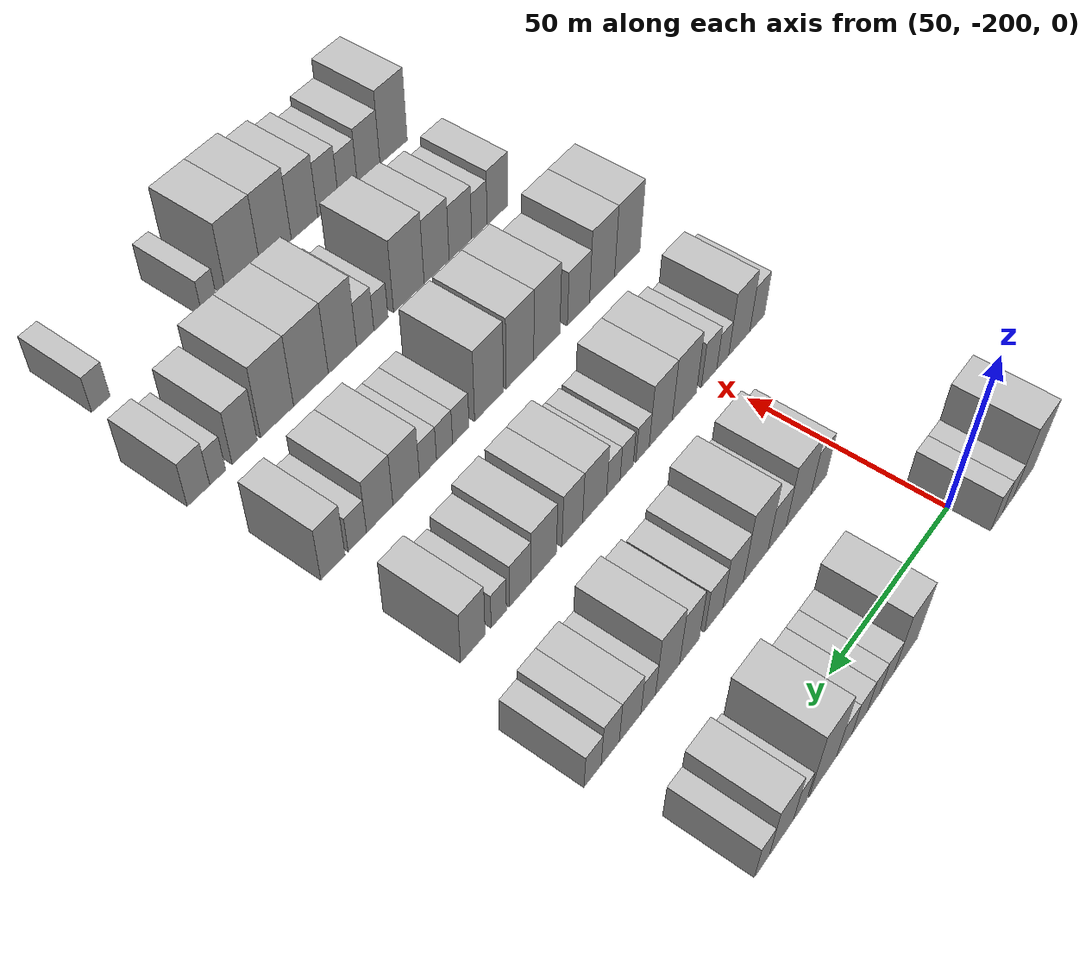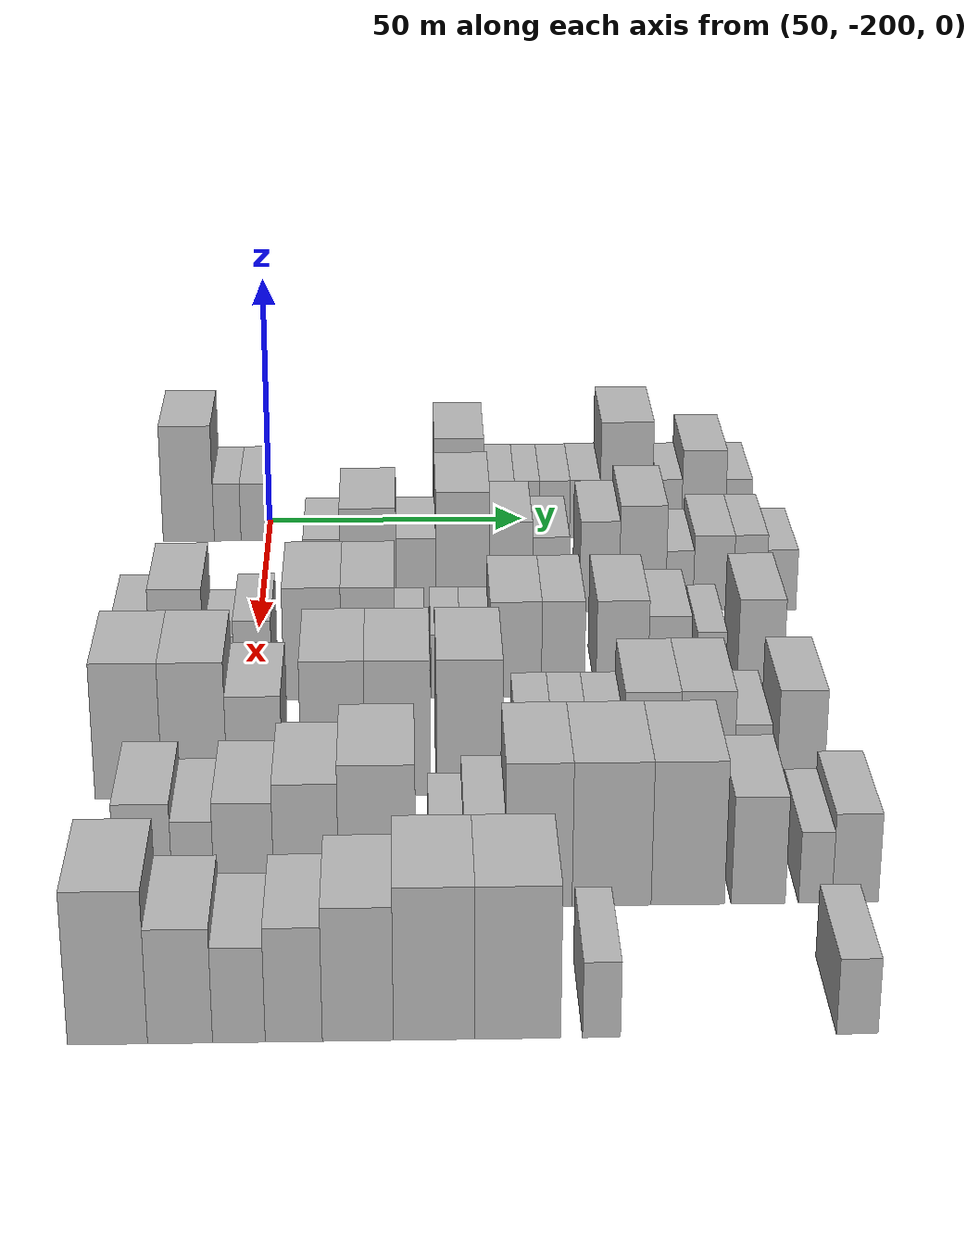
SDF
<sdf version="1.6">
 <world name="default">
  <model name="building_39">
   <static>1</static>
   <pose>50.0000 -215.5346 0 0.000000 0.000000 0.000000</pose>
   <link name="link">
    <pose>0 0 12.00 0 0 0</pose>
    <collision name="collision"><geometry><box><size>20.0000 9.9500 24.0000</size></box></geometry></collision>
    <visual name="visual">
     <cast_shadows>0</cast_shadows>
     <geometry><box><size>20.0000 9.9500 24.0000</size></box></geometry>
     <material>
      <script>
       <uri>model://HANNAS_wall/materials/scripts</uri>
       <uri>model://HANNAS_wall/materials/textures</uri>
       <name>vrc/HANNAS_wall</name>
      </script>
     </material>
    </visual>
   </link>
  </model>
  <model name="building_40">
   <static>1</static>
   <pose>50.0000 -207.9537 0 0.000000 0.000000 0.000000</pose>
   <link name="link">
    <pose>0 0 6.00 0 0 0</pose>
    <collision name="collision"><geometry><box><size>20.0000 5.2118 12.0000</size></box></geometry></collision>
    <visual name="visual">
     <cast_shadows>0</cast_shadows>
     <geometry><box><size>20.0000 5.2118 12.0000</size></box></geometry>
     <material>
      <script>
       <uri>model://HANNAS_wall/materials/scripts</uri>
       <uri>model://HANNAS_wall/materials/textures</uri>
       <name>vrc/HANNAS_wall</name>
      </script>
     </material>
    </visual>
   </link>
  </model>
  <model name="building_41">
   <static>1</static>
   <pose>50.0000 -202.7096 0 0.000000 0.000000 0.000000</pose>
   <link name="link">
    <pose>0 0 6.00 0 0 0</pose>
    <collision name="collision"><geometry><box><size>20.0000 5.2764 12.0000</size></box></geometry></collision>
    <visual name="visual">
     <cast_shadows>0</cast_shadows>
     <geometry><box><size>20.0000 5.2764 12.0000</size></box></geometry>
     <material>
      <script>
       <uri>model://HANNAS_wall/materials/scripts</uri>
       <uri>model://HANNAS_wall/materials/textures</uri>
       <name>vrc/HANNAS_wall</name>
      </script>
     </material>
    </visual>
   </link>
  </model>
  <model name="building_42">
   <static>1</static>
   <pose>50.0000 -162.7094 0 0.000000 0.000000 0.000000</pose>
   <link name="link">
    <pose>0 0 10.50 0 0 0</pose>
    <collision name="collision"><geometry><box><size>20.0000 9.5746 21.0000</size></box></geometry></collision>
    <visual name="visual">
     <cast_shadows>0</cast_shadows>
     <geometry><box><size>20.0000 9.5746 21.0000</size></box></geometry>
     <material>
      <script>
       <uri>model://HANNAS_wall/materials/scripts</uri>
       <uri>model://HANNAS_wall/materials/textures</uri>
       <name>vrc/HANNAS_wall</name>
      </script>
     </material>
    </visual>
   </link>
  </model>
  <model name="building_43">
   <static>1</static>
   <pose>50.0000 -154.9407 0 0.000000 0.000000 0.000000</pose>
   <link name="link">
    <pose>0 0 6.00 0 0 0</pose>
    <collision name="collision"><geometry><box><size>20.0000 5.9628 12.0000</size></box></geometry></collision>
    <visual name="visual">
     <cast_shadows>0</cast_shadows>
     <geometry><box><size>20.0000 5.9628 12.0000</size></box></geometry>
     <material>
      <script>
       <uri>model://HANNAS_wall/materials/scripts</uri>
       <uri>model://HANNAS_wall/materials/textures</uri>
       <name>vrc/HANNAS_wall</name>
      </script>
     </material>
    </visual>
   </link>
  </model>
  <model name="building_44">
   <static>1</static>
   <pose>50.0000 -149.4880 0 0.000000 0.000000 0.000000</pose>
   <link name="link">
    <pose>0 0 6.00 0 0 0</pose>
    <collision name="collision"><geometry><box><size>20.0000 4.9427 12.0000</size></box></geometry></collision>
    <visual name="visual">
     <cast_shadows>0</cast_shadows>
     <geometry><box><size>20.0000 4.9427 12.0000</size></box></geometry>
     <material>
      <script>
       <uri>model://HANNAS_wall/materials/scripts</uri>
       <uri>model://HANNAS_wall/materials/textures</uri>
       <name>vrc/HANNAS_wall</name>
      </script>
     </material>
    </visual>
   </link>
  </model>
  <model name="building_45">
   <static>1</static>
   <pose>50.0000 -144.0399 0 0.000000 0.000000 0.000000</pose>
   <link name="link">
    <pose>0 0 6.00 0 0 0</pose>
    <collision name="collision"><geometry><box><size>20.0000 5.9533 12.0000</size></box></geometry></collision>
    <visual name="visual">
     <cast_shadows>0</cast_shadows>
     <geometry><box><size>20.0000 5.9533 12.0000</size></box></geometry>
     <material>
      <script>
       <uri>model://HANNAS_wall/materials/scripts</uri>
       <uri>model://HANNAS_wall/materials/textures</uri>
       <name>vrc/HANNAS_wall</name>
      </script>
     </material>
    </visual>
   </link>
  </model>
  <model name="building_46">
   <static>1</static>
   <pose>50.0000 -138.1157 0 0.000000 0.000000 0.000000</pose>
   <link name="link">
    <pose>0 0 6.00 0 0 0</pose>
    <collision name="collision"><geometry><box><size>20.0000 5.8952 12.0000</size></box></geometry></collision>
    <visual name="visual">
     <cast_shadows>0</cast_shadows>
     <geometry><box><size>20.0000 5.8952 12.0000</size></box></geometry>
     <material>
      <script>
       <uri>model://HANNAS_wall/materials/scripts</uri>
       <uri>model://HANNAS_wall/materials/textures</uri>
       <name>vrc/HANNAS_wall</name>
      </script>
     </material>
    </visual>
   </link>
  </model>
  <model name="building_47">
   <static>1</static>
   <pose>50.0000 -130.0815 0 0.000000 0.000000 0.000000</pose>
   <link name="link">
    <pose>0 0 12.00 0 0 0</pose>
    <collision name="collision"><geometry><box><size>20.0000 10.1733 24.0000</size></box></geometry></collision>
    <visual name="visual">
     <cast_shadows>0</cast_shadows>
     <geometry><box><size>20.0000 10.1733 24.0000</size></box></geometry>
     <material>
      <script>
       <uri>model://HANNAS_wall/materials/scripts</uri>
       <uri>model://HANNAS_wall/materials/textures</uri>
       <name>vrc/HANNAS_wall</name>
      </script>
     </material>
    </visual>
   </link>
  </model>
  <model name="building_48">
   <static>1</static>
   <pose>50.0000 -121.5753 0 0.000000 0.000000 0.000000</pose>
   <link name="link">
    <pose>0 0 6.00 0 0 0</pose>
    <collision name="collision"><geometry><box><size>20.0000 4.8391 12.0000</size></box></geometry></collision>
    <visual name="visual">
     <cast_shadows>0</cast_shadows>
     <geometry><box><size>20.0000 4.8391 12.0000</size></box></geometry>
     <material>
      <script>
       <uri>model://HANNAS_wall/materials/scripts</uri>
       <uri>model://HANNAS_wall/materials/textures</uri>
       <name>vrc/HANNAS_wall</name>
      </script>
     </material>
    </visual>
   </link>
  </model>
  <model name="building_49">
   <static>1</static>
   <pose>50.0000 -114.8690 0 0.000000 0.000000 0.000000</pose>
   <link name="link">
    <pose>0 0 9.00 0 0 0</pose>
    <collision name="collision"><geometry><box><size>20.0000 8.5733 18.0000</size></box></geometry></collision>
    <visual name="visual">
     <cast_shadows>0</cast_shadows>
     <geometry><box><size>20.0000 8.5733 18.0000</size></box></geometry>
     <material>
      <script>
       <uri>model://HANNAS_wall/materials/scripts</uri>
       <uri>model://HANNAS_wall/materials/textures</uri>
       <name>vrc/HANNAS_wall</name>
      </script>
     </material>
    </visual>
   </link>
  </model>
  <model name="building_50">
   <static>1</static>
   <pose>50.0000 -108.0391 0 0.000000 0.000000 0.000000</pose>
   <link name="link">
    <pose>0 0 6.00 0 0 0</pose>
    <collision name="collision"><geometry><box><size>20.0000 5.0865 12.0000</size></box></geometry></collision>
    <visual name="visual">
     <cast_shadows>0</cast_shadows>
     <geometry><box><size>20.0000 5.0865 12.0000</size></box></geometry>
     <material>
      <script>
       <uri>model://HANNAS_wall/materials/scripts</uri>
       <uri>model://HANNAS_wall/materials/textures</uri>
       <name>vrc/HANNAS_wall</name>
      </script>
     </material>
    </visual>
   </link>
  </model>
  <model name="building_165">
   <static>1</static>
   <pose>85.0000 -188.5777 0 0.000000 0.000000 0.000000</pose>
   <link name="link">
    <pose>0 0 7.50 0 0 0</pose>
    <collision name="collision"><geometry><box><size>20.0000 6.6778 15.0000</size></box></geometry></collision>
    <visual name="visual">
     <cast_shadows>0</cast_shadows>
     <geometry><box><size>20.0000 6.6778 15.0000</size></box></geometry>
     <material>
      <script>
       <uri>model://HANNAS_wall/materials/scripts</uri>
       <uri>model://HANNAS_wall/materials/textures</uri>
       <name>vrc/HANNAS_wall</name>
      </script>
     </material>
    </visual>
   </link>
  </model>
  <model name="building_166">
   <static>1</static>
   <pose>85.0000 -180.1051 0 0.000000 0.000000 0.000000</pose>
   <link name="link">
    <pose>0 0 10.50 0 0 0</pose>
    <collision name="collision"><geometry><box><size>20.0000 10.2673 21.0000</size></box></geometry></collision>
    <visual name="visual">
     <cast_shadows>0</cast_shadows>
     <geometry><box><size>20.0000 10.2673 21.0000</size></box></geometry>
     <material>
      <script>
       <uri>model://HANNAS_wall/materials/scripts</uri>
       <uri>model://HANNAS_wall/materials/textures</uri>
       <name>vrc/HANNAS_wall</name>
      </script>
     </material>
    </visual>
   </link>
  </model>
  <model name="building_167">
   <static>1</static>
   <pose>85.0000 -171.3459 0 0.000000 0.000000 0.000000</pose>
   <link name="link">
    <pose>0 0 7.50 0 0 0</pose>
    <collision name="collision"><geometry><box><size>20.0000 7.2512 15.0000</size></box></geometry></collision>
    <visual name="visual">
     <cast_shadows>0</cast_shadows>
     <geometry><box><size>20.0000 7.2512 15.0000</size></box></geometry>
     <material>
      <script>
       <uri>model://HANNAS_wall/materials/scripts</uri>
       <uri>model://HANNAS_wall/materials/textures</uri>
       <name>vrc/HANNAS_wall</name>
      </script>
     </material>
    </visual>
   </link>
  </model>
  <model name="building_168">
   <static>1</static>
   <pose>85.0000 -162.7959 0 0.000000 0.000000 0.000000</pose>
   <link name="link">
    <pose>0 0 12.00 0 0 0</pose>
    <collision name="collision"><geometry><box><size>20.0000 9.8489 24.0000</size></box></geometry></collision>
    <visual name="visual">
     <cast_shadows>0</cast_shadows>
     <geometry><box><size>20.0000 9.8489 24.0000</size></box></geometry>
     <material>
      <script>
       <uri>model://HANNAS_wall/materials/scripts</uri>
       <uri>model://HANNAS_wall/materials/textures</uri>
       <name>vrc/HANNAS_wall</name>
      </script>
     </material>
    </visual>
   </link>
  </model>
  <model name="building_169">
   <static>1</static>
   <pose>85.0000 -153.9566 0 0.000000 0.000000 0.000000</pose>
   <link name="link">
    <pose>0 0 9.00 0 0 0</pose>
    <collision name="collision"><geometry><box><size>20.0000 7.8296 18.0000</size></box></geometry></collision>
    <visual name="visual">
     <cast_shadows>0</cast_shadows>
     <geometry><box><size>20.0000 7.8296 18.0000</size></box></geometry>
     <material>
      <script>
       <uri>model://HANNAS_wall/materials/scripts</uri>
       <uri>model://HANNAS_wall/materials/textures</uri>
       <name>vrc/HANNAS_wall</name>
      </script>
     </material>
    </visual>
   </link>
  </model>
  <model name="building_170">
   <static>1</static>
   <pose>85.0000 -146.6540 0 0.000000 0.000000 0.000000</pose>
   <link name="link">
    <pose>0 0 7.50 0 0 0</pose>
    <collision name="collision"><geometry><box><size>20.0000 6.7756 15.0000</size></box></geometry></collision>
    <visual name="visual">
     <cast_shadows>0</cast_shadows>
     <geometry><box><size>20.0000 6.7756 15.0000</size></box></geometry>
     <material>
      <script>
       <uri>model://HANNAS_wall/materials/scripts</uri>
       <uri>model://HANNAS_wall/materials/textures</uri>
       <name>vrc/HANNAS_wall</name>
      </script>
     </material>
    </visual>
   </link>
  </model>
  <model name="building_171">
   <static>1</static>
   <pose>85.0000 -137.6539 0 0.000000 0.000000 0.000000</pose>
   <link name="link">
    <pose>0 0 9.00 0 0 0</pose>
    <collision name="collision"><geometry><box><size>20.0000 7.2247 18.0000</size></box></geometry></collision>
    <visual name="visual">
     <cast_shadows>0</cast_shadows>
     <geometry><box><size>20.0000 7.2247 18.0000</size></box></geometry>
     <material>
      <script>
       <uri>model://HANNAS_wall/materials/scripts</uri>
       <uri>model://HANNAS_wall/materials/textures</uri>
       <name>vrc/HANNAS_wall</name>
      </script>
     </material>
    </visual>
   </link>
  </model>
  <model name="building_172">
   <static>1</static>
   <pose>85.0000 -129.7436 0 0.000000 0.000000 0.000000</pose>
   <link name="link">
    <pose>0 0 10.50 0 0 0</pose>
    <collision name="collision"><geometry><box><size>20.0000 8.5960 21.0000</size></box></geometry></collision>
    <visual name="visual">
     <cast_shadows>0</cast_shadows>
     <geometry><box><size>20.0000 8.5960 21.0000</size></box></geometry>
     <material>
      <script>
       <uri>model://HANNAS_wall/materials/scripts</uri>
       <uri>model://HANNAS_wall/materials/textures</uri>
       <name>vrc/HANNAS_wall</name>
      </script>
     </material>
    </visual>
   </link>
  </model>
  <model name="building_173">
   <static>1</static>
   <pose>85.0000 -122.9085 0 0.000000 0.000000 0.000000</pose>
   <link name="link">
    <pose>0 0 6.00 0 0 0</pose>
    <collision name="collision"><geometry><box><size>20.0000 5.0741 12.0000</size></box></geometry></collision>
    <visual name="visual">
     <cast_shadows>0</cast_shadows>
     <geometry><box><size>20.0000 5.0741 12.0000</size></box></geometry>
     <material>
      <script>
       <uri>model://HANNAS_wall/materials/scripts</uri>
       <uri>model://HANNAS_wall/materials/textures</uri>
       <name>vrc/HANNAS_wall</name>
      </script>
     </material>
    </visual>
   </link>
  </model>
  <model name="building_174">
   <static>1</static>
   <pose>85.0000 -116.6750 0 0.000000 0.000000 0.000000</pose>
   <link name="link">
    <pose>0 0 7.50 0 0 0</pose>
    <collision name="collision"><geometry><box><size>20.0000 7.3929 15.0000</size></box></geometry></collision>
    <visual name="visual">
     <cast_shadows>0</cast_shadows>
     <geometry><box><size>20.0000 7.3929 15.0000</size></box></geometry>
     <material>
      <script>
       <uri>model://HANNAS_wall/materials/scripts</uri>
       <uri>model://HANNAS_wall/materials/textures</uri>
       <name>vrc/HANNAS_wall</name>
      </script>
     </material>
    </visual>
   </link>
  </model>
  <model name="building_175">
   <static>1</static>
   <pose>85.0000 -109.9539 0 0.000000 0.000000 0.000000</pose>
   <link name="link">
    <pose>0 0 7.50 0 0 0</pose>
    <collision name="collision"><geometry><box><size>20.0000 6.0492 15.0000</size></box></geometry></collision>
    <visual name="visual">
     <cast_shadows>0</cast_shadows>
     <geometry><box><size>20.0000 6.0492 15.0000</size></box></geometry>
     <material>
      <script>
       <uri>model://HANNAS_wall/materials/scripts</uri>
       <uri>model://HANNAS_wall/materials/textures</uri>
       <name>vrc/HANNAS_wall</name>
      </script>
     </material>
    </visual>
   </link>
  </model>
  <model name="building_176">
   <static>1</static>
   <pose>85.0000 -104.1159 0 0.000000 0.000000 0.000000</pose>
   <link name="link">
    <pose>0 0 6.00 0 0 0</pose>
    <collision name="collision"><geometry><box><size>20.0000 5.6268 12.0000</size></box></geometry></collision>
    <visual name="visual">
     <cast_shadows>0</cast_shadows>
     <geometry><box><size>20.0000 5.6268 12.0000</size></box></geometry>
     <material>
      <script>
       <uri>model://HANNAS_wall/materials/scripts</uri>
       <uri>model://HANNAS_wall/materials/textures</uri>
       <name>vrc/HANNAS_wall</name>
      </script>
     </material>
    </visual>
   </link>
  </model>
  <model name="building_287">
   <static>1</static>
   <pose>120.0000 -220.3184 0 0.000000 0.000000 0.000000</pose>
   <link name="link">
    <pose>0 0 7.50 0 0 0</pose>
    <collision name="collision"><geometry><box><size>20.0000 6.4978 15.0000</size></box></geometry></collision>
    <visual name="visual">
     <cast_shadows>0</cast_shadows>
     <geometry><box><size>20.0000 6.4978 15.0000</size></box></geometry>
     <material>
      <script>
       <uri>model://HANNAS_wall/materials/scripts</uri>
       <uri>model://HANNAS_wall/materials/textures</uri>
       <name>vrc/HANNAS_wall</name>
      </script>
     </material>
    </visual>
   </link>
  </model>
  <model name="building_288">
   <static>1</static>
   <pose>120.0000 -212.4905 0 0.000000 0.000000 0.000000</pose>
   <link name="link">
    <pose>0 0 10.50 0 0 0</pose>
    <collision name="collision"><geometry><box><size>20.0000 9.1580 21.0000</size></box></geometry></collision>
    <visual name="visual">
     <cast_shadows>0</cast_shadows>
     <geometry><box><size>20.0000 9.1580 21.0000</size></box></geometry>
     <material>
      <script>
       <uri>model://HANNAS_wall/materials/scripts</uri>
       <uri>model://HANNAS_wall/materials/textures</uri>
       <name>vrc/HANNAS_wall</name>
      </script>
     </material>
    </visual>
   </link>
  </model>
  <model name="building_289">
   <static>1</static>
   <pose>120.0000 -205.3652 0 0.000000 0.000000 0.000000</pose>
   <link name="link">
    <pose>0 0 6.00 0 0 0</pose>
    <collision name="collision"><geometry><box><size>20.0000 5.0926 12.0000</size></box></geometry></collision>
    <visual name="visual">
     <cast_shadows>0</cast_shadows>
     <geometry><box><size>20.0000 5.0926 12.0000</size></box></geometry>
     <material>
      <script>
       <uri>model://HANNAS_wall/materials/scripts</uri>
       <uri>model://HANNAS_wall/materials/textures</uri>
       <name>vrc/HANNAS_wall</name>
      </script>
     </material>
    </visual>
   </link>
  </model>
  <model name="building_290">
   <static>1</static>
   <pose>120.0000 -199.5821 0 0.000000 0.000000 0.000000</pose>
   <link name="link">
    <pose>0 0 7.50 0 0 0</pose>
    <collision name="collision"><geometry><box><size>20.0000 6.4737 15.0000</size></box></geometry></collision>
    <visual name="visual">
     <cast_shadows>0</cast_shadows>
     <geometry><box><size>20.0000 6.4737 15.0000</size></box></geometry>
     <material>
      <script>
       <uri>model://HANNAS_wall/materials/scripts</uri>
       <uri>model://HANNAS_wall/materials/textures</uri>
       <name>vrc/HANNAS_wall</name>
      </script>
     </material>
    </visual>
   </link>
  </model>
  <model name="building_291">
   <static>1</static>
   <pose>120.0000 -189.3770 0 0.000000 0.000000 0.000000</pose>
   <link name="link">
    <pose>0 0 10.50 0 0 0</pose>
    <collision name="collision"><geometry><box><size>20.0000 9.9364 21.0000</size></box></geometry></collision>
    <visual name="visual">
     <cast_shadows>0</cast_shadows>
     <geometry><box><size>20.0000 9.9364 21.0000</size></box></geometry>
     <material>
      <script>
       <uri>model://HANNAS_wall/materials/scripts</uri>
       <uri>model://HANNAS_wall/materials/textures</uri>
       <name>vrc/HANNAS_wall</name>
      </script>
     </material>
    </visual>
   </link>
  </model>
  <model name="building_292">
   <static>1</static>
   <pose>120.0000 -179.8416 0 0.000000 0.000000 0.000000</pose>
   <link name="link">
    <pose>0 0 10.50 0 0 0</pose>
    <collision name="collision"><geometry><box><size>20.0000 9.1345 21.0000</size></box></geometry></collision>
    <visual name="visual">
     <cast_shadows>0</cast_shadows>
     <geometry><box><size>20.0000 9.1345 21.0000</size></box></geometry>
     <material>
      <script>
       <uri>model://HANNAS_wall/materials/scripts</uri>
       <uri>model://HANNAS_wall/materials/textures</uri>
       <name>vrc/HANNAS_wall</name>
      </script>
     </material>
    </visual>
   </link>
  </model>
  <model name="building_293">
   <static>1</static>
   <pose>120.0000 -172.6860 0 0.000000 0.000000 0.000000</pose>
   <link name="link">
    <pose>0 0 6.00 0 0 0</pose>
    <collision name="collision"><geometry><box><size>20.0000 5.1766 12.0000</size></box></geometry></collision>
    <visual name="visual">
     <cast_shadows>0</cast_shadows>
     <geometry><box><size>20.0000 5.1766 12.0000</size></box></geometry>
     <material>
      <script>
       <uri>model://HANNAS_wall/materials/scripts</uri>
       <uri>model://HANNAS_wall/materials/textures</uri>
       <name>vrc/HANNAS_wall</name>
      </script>
     </material>
    </visual>
   </link>
  </model>
  <model name="building_294">
   <static>1</static>
   <pose>120.0000 -166.5738 0 0.000000 0.000000 0.000000</pose>
   <link name="link">
    <pose>0 0 6.00 0 0 0</pose>
    <collision name="collision"><geometry><box><size>20.0000 5.0478 12.0000</size></box></geometry></collision>
    <visual name="visual">
     <cast_shadows>0</cast_shadows>
     <geometry><box><size>20.0000 5.0478 12.0000</size></box></geometry>
     <material>
      <script>
       <uri>model://HANNAS_wall/materials/scripts</uri>
       <uri>model://HANNAS_wall/materials/textures</uri>
       <name>vrc/HANNAS_wall</name>
      </script>
     </material>
    </visual>
   </link>
  </model>
  <model name="building_295">
   <static>1</static>
   <pose>120.0000 -161.4937 0 0.000000 0.000000 0.000000</pose>
   <link name="link">
    <pose>0 0 6.00 0 0 0</pose>
    <collision name="collision"><geometry><box><size>20.0000 5.1123 12.0000</size></box></geometry></collision>
    <visual name="visual">
     <cast_shadows>0</cast_shadows>
     <geometry><box><size>20.0000 5.1123 12.0000</size></box></geometry>
     <material>
      <script>
       <uri>model://HANNAS_wall/materials/scripts</uri>
       <uri>model://HANNAS_wall/materials/textures</uri>
       <name>vrc/HANNAS_wall</name>
      </script>
     </material>
    </visual>
   </link>
  </model>
  <model name="building_296">
   <static>1</static>
   <pose>120.0000 -154.5065 0 0.000000 0.000000 0.000000</pose>
   <link name="link">
    <pose>0 0 9.00 0 0 0</pose>
    <collision name="collision"><geometry><box><size>20.0000 8.8622 18.0000</size></box></geometry></collision>
    <visual name="visual">
     <cast_shadows>0</cast_shadows>
     <geometry><box><size>20.0000 8.8622 18.0000</size></box></geometry>
     <material>
      <script>
       <uri>model://HANNAS_wall/materials/scripts</uri>
       <uri>model://HANNAS_wall/materials/textures</uri>
       <name>vrc/HANNAS_wall</name>
      </script>
     </material>
    </visual>
   </link>
  </model>
  <model name="building_297">
   <static>1</static>
   <pose>120.0000 -146.3735 0 0.000000 0.000000 0.000000</pose>
   <link name="link">
    <pose>0 0 9.00 0 0 0</pose>
    <collision name="collision"><geometry><box><size>20.0000 7.4038 18.0000</size></box></geometry></collision>
    <visual name="visual">
     <cast_shadows>0</cast_shadows>
     <geometry><box><size>20.0000 7.4038 18.0000</size></box></geometry>
     <material>
      <script>
       <uri>model://HANNAS_wall/materials/scripts</uri>
       <uri>model://HANNAS_wall/materials/textures</uri>
       <name>vrc/HANNAS_wall</name>
      </script>
     </material>
    </visual>
   </link>
  </model>
  <model name="building_298">
   <static>1</static>
   <pose>120.0000 -136.1927 0 0.000000 0.000000 0.000000</pose>
   <link name="link">
    <pose>0 0 9.00 0 0 0</pose>
    <collision name="collision"><geometry><box><size>20.0000 8.9578 18.0000</size></box></geometry></collision>
    <visual name="visual">
     <cast_shadows>0</cast_shadows>
     <geometry><box><size>20.0000 8.9578 18.0000</size></box></geometry>
     <material>
      <script>
       <uri>model://HANNAS_wall/materials/scripts</uri>
       <uri>model://HANNAS_wall/materials/textures</uri>
       <name>vrc/HANNAS_wall</name>
      </script>
     </material>
    </visual>
   </link>
  </model>
  <model name="building_299">
   <static>1</static>
   <pose>120.0000 -128.0557 0 0.000000 0.000000 0.000000</pose>
   <link name="link">
    <pose>0 0 7.50 0 0 0</pose>
    <collision name="collision"><geometry><box><size>20.0000 7.3161 15.0000</size></box></geometry></collision>
    <visual name="visual">
     <cast_shadows>0</cast_shadows>
     <geometry><box><size>20.0000 7.3161 15.0000</size></box></geometry>
     <material>
      <script>
       <uri>model://HANNAS_wall/materials/scripts</uri>
       <uri>model://HANNAS_wall/materials/textures</uri>
       <name>vrc/HANNAS_wall</name>
      </script>
     </material>
    </visual>
   </link>
  </model>
  <model name="building_300">
   <static>1</static>
   <pose>120.0000 -120.8568 0 0.000000 0.000000 0.000000</pose>
   <link name="link">
    <pose>0 0 6.00 0 0 0</pose>
    <collision name="collision"><geometry><box><size>20.0000 5.0817 12.0000</size></box></geometry></collision>
    <visual name="visual">
     <cast_shadows>0</cast_shadows>
     <geometry><box><size>20.0000 5.0817 12.0000</size></box></geometry>
     <material>
      <script>
       <uri>model://HANNAS_wall/materials/scripts</uri>
       <uri>model://HANNAS_wall/materials/textures</uri>
       <name>vrc/HANNAS_wall</name>
      </script>
     </material>
    </visual>
   </link>
  </model>
  <model name="building_301">
   <static>1</static>
   <pose>120.0000 -112.3192 0 0.000000 0.000000 0.000000</pose>
   <link name="link">
    <pose>0 0 9.00 0 0 0</pose>
    <collision name="collision"><geometry><box><size>20.0000 7.9935 18.0000</size></box></geometry></collision>
    <visual name="visual">
     <cast_shadows>0</cast_shadows>
     <geometry><box><size>20.0000 7.9935 18.0000</size></box></geometry>
     <material>
      <script>
       <uri>model://HANNAS_wall/materials/scripts</uri>
       <uri>model://HANNAS_wall/materials/textures</uri>
       <name>vrc/HANNAS_wall</name>
      </script>
     </material>
    </visual>
   </link>
  </model>
  <model name="building_420">
   <static>1</static>
   <pose>155.0000 -217.9169 0 0.000000 0.000000 0.000000</pose>
   <link name="link">
    <pose>0 0 12.00 0 0 0</pose>
    <collision name="collision"><geometry><box><size>20.0000 10.7536 24.0000</size></box></geometry></collision>
    <visual name="visual">
     <cast_shadows>0</cast_shadows>
     <geometry><box><size>20.0000 10.7536 24.0000</size></box></geometry>
     <material>
      <script>
       <uri>model://HANNAS_wall/materials/scripts</uri>
       <uri>model://HANNAS_wall/materials/textures</uri>
       <name>vrc/HANNAS_wall</name>
      </script>
     </material>
    </visual>
   </link>
  </model>
  <model name="building_421">
   <static>1</static>
   <pose>155.0000 -207.3385 0 0.000000 0.000000 0.000000</pose>
   <link name="link">
    <pose>0 0 12.00 0 0 0</pose>
    <collision name="collision"><geometry><box><size>20.0000 10.4033 24.0000</size></box></geometry></collision>
    <visual name="visual">
     <cast_shadows>0</cast_shadows>
     <geometry><box><size>20.0000 10.4033 24.0000</size></box></geometry>
     <material>
      <script>
       <uri>model://HANNAS_wall/materials/scripts</uri>
       <uri>model://HANNAS_wall/materials/textures</uri>
       <name>vrc/HANNAS_wall</name>
      </script>
     </material>
    </visual>
   </link>
  </model>
  <model name="building_422">
   <static>1</static>
   <pose>155.0000 -197.7016 0 0.000000 0.000000 0.000000</pose>
   <link name="link">
    <pose>0 0 9.00 0 0 0</pose>
    <collision name="collision"><geometry><box><size>20.0000 8.8704 18.0000</size></box></geometry></collision>
    <visual name="visual">
     <cast_shadows>0</cast_shadows>
     <geometry><box><size>20.0000 8.8704 18.0000</size></box></geometry>
     <material>
      <script>
       <uri>model://HANNAS_wall/materials/scripts</uri>
       <uri>model://HANNAS_wall/materials/textures</uri>
       <name>vrc/HANNAS_wall</name>
      </script>
     </material>
    </visual>
   </link>
  </model>
  <model name="building_423">
   <static>1</static>
   <pose>155.0000 -185.1648 0 0.000000 0.000000 0.000000</pose>
   <link name="link">
    <pose>0 0 12.00 0 0 0</pose>
    <collision name="collision"><geometry><box><size>20.0000 10.2032 24.0000</size></box></geometry></collision>
    <visual name="visual">
     <cast_shadows>0</cast_shadows>
     <geometry><box><size>20.0000 10.2032 24.0000</size></box></geometry>
     <material>
      <script>
       <uri>model://HANNAS_wall/materials/scripts</uri>
       <uri>model://HANNAS_wall/materials/textures</uri>
       <name>vrc/HANNAS_wall</name>
      </script>
     </material>
    </visual>
   </link>
  </model>
  <model name="building_424">
   <static>1</static>
   <pose>155.0000 -174.8388 0 0.000000 0.000000 0.000000</pose>
   <link name="link">
    <pose>0 0 12.00 0 0 0</pose>
    <collision name="collision"><geometry><box><size>20.0000 10.4487 24.0000</size></box></geometry></collision>
    <visual name="visual">
     <cast_shadows>0</cast_shadows>
     <geometry><box><size>20.0000 10.4487 24.0000</size></box></geometry>
     <material>
      <script>
       <uri>model://HANNAS_wall/materials/scripts</uri>
       <uri>model://HANNAS_wall/materials/textures</uri>
       <name>vrc/HANNAS_wall</name>
      </script>
     </material>
    </visual>
   </link>
  </model>
  <model name="building_425">
   <static>1</static>
   <pose>155.0000 -163.3255 0 0.000000 0.000000 0.000000</pose>
   <link name="link">
    <pose>0 0 12.00 0 0 0</pose>
    <collision name="collision"><geometry><box><size>20.0000 10.5778 24.0000</size></box></geometry></collision>
    <visual name="visual">
     <cast_shadows>0</cast_shadows>
     <geometry><box><size>20.0000 10.5778 24.0000</size></box></geometry>
     <material>
      <script>
       <uri>model://HANNAS_wall/materials/scripts</uri>
       <uri>model://HANNAS_wall/materials/textures</uri>
       <name>vrc/HANNAS_wall</name>
      </script>
     </material>
    </visual>
   </link>
  </model>
  <model name="building_426">
   <static>1</static>
   <pose>155.0000 -153.0970 0 0.000000 0.000000 0.000000</pose>
   <link name="link">
    <pose>0 0 6.00 0 0 0</pose>
    <collision name="collision"><geometry><box><size>20.0000 5.8791 12.0000</size></box></geometry></collision>
    <visual name="visual">
     <cast_shadows>0</cast_shadows>
     <geometry><box><size>20.0000 5.8791 12.0000</size></box></geometry>
     <material>
      <script>
       <uri>model://HANNAS_wall/materials/scripts</uri>
       <uri>model://HANNAS_wall/materials/textures</uri>
       <name>vrc/HANNAS_wall</name>
      </script>
     </material>
    </visual>
   </link>
  </model>
  <model name="building_427">
   <static>1</static>
   <pose>155.0000 -147.3358 0 0.000000 0.000000 0.000000</pose>
   <link name="link">
    <pose>0 0 6.00 0 0 0</pose>
    <collision name="collision"><geometry><box><size>20.0000 5.6433 12.0000</size></box></geometry></collision>
    <visual name="visual">
     <cast_shadows>0</cast_shadows>
     <geometry><box><size>20.0000 5.6433 12.0000</size></box></geometry>
     <material>
      <script>
       <uri>model://HANNAS_wall/materials/scripts</uri>
       <uri>model://HANNAS_wall/materials/textures</uri>
       <name>vrc/HANNAS_wall</name>
      </script>
     </material>
    </visual>
   </link>
  </model>
  <model name="building_428">
   <static>1</static>
   <pose>155.0000 -141.5800 0 0.000000 0.000000 0.000000</pose>
   <link name="link">
    <pose>0 0 6.00 0 0 0</pose>
    <collision name="collision"><geometry><box><size>20.0000 5.8682 12.0000</size></box></geometry></collision>
    <visual name="visual">
     <cast_shadows>0</cast_shadows>
     <geometry><box><size>20.0000 5.8682 12.0000</size></box></geometry>
     <material>
      <script>
       <uri>model://HANNAS_wall/materials/scripts</uri>
       <uri>model://HANNAS_wall/materials/textures</uri>
       <name>vrc/HANNAS_wall</name>
      </script>
     </material>
    </visual>
   </link>
  </model>
  <model name="building_429">
   <static>1</static>
   <pose>155.0000 -134.1544 0 0.000000 0.000000 0.000000</pose>
   <link name="link">
    <pose>0 0 9.00 0 0 0</pose>
    <collision name="collision"><geometry><box><size>20.0000 8.9831 18.0000</size></box></geometry></collision>
    <visual name="visual">
     <cast_shadows>0</cast_shadows>
     <geometry><box><size>20.0000 8.9831 18.0000</size></box></geometry>
     <material>
      <script>
       <uri>model://HANNAS_wall/materials/scripts</uri>
       <uri>model://HANNAS_wall/materials/textures</uri>
       <name>vrc/HANNAS_wall</name>
      </script>
     </material>
    </visual>
   </link>
  </model>
  <model name="building_430">
   <static>1</static>
   <pose>155.0000 -125.2799 0 0.000000 0.000000 0.000000</pose>
   <link name="link">
    <pose>0 0 9.00 0 0 0</pose>
    <collision name="collision"><geometry><box><size>20.0000 8.7658 18.0000</size></box></geometry></collision>
    <visual name="visual">
     <cast_shadows>0</cast_shadows>
     <geometry><box><size>20.0000 8.7658 18.0000</size></box></geometry>
     <material>
      <script>
       <uri>model://HANNAS_wall/materials/scripts</uri>
       <uri>model://HANNAS_wall/materials/textures</uri>
       <name>vrc/HANNAS_wall</name>
      </script>
     </material>
    </visual>
   </link>
  </model>
  <model name="building_431">
   <static>1</static>
   <pose>155.0000 -117.9385 0 0.000000 0.000000 0.000000</pose>
   <link name="link">
    <pose>0 0 6.00 0 0 0</pose>
    <collision name="collision"><geometry><box><size>20.0000 5.9170 12.0000</size></box></geometry></collision>
    <visual name="visual">
     <cast_shadows>0</cast_shadows>
     <geometry><box><size>20.0000 5.9170 12.0000</size></box></geometry>
     <material>
      <script>
       <uri>model://HANNAS_wall/materials/scripts</uri>
       <uri>model://HANNAS_wall/materials/textures</uri>
       <name>vrc/HANNAS_wall</name>
      </script>
     </material>
    </visual>
   </link>
  </model>
  <model name="building_432">
   <static>1</static>
   <pose>155.0000 -110.1418 0 0.000000 0.000000 0.000000</pose>
   <link name="link">
    <pose>0 0 9.00 0 0 0</pose>
    <collision name="collision"><geometry><box><size>20.0000 7.6765 18.0000</size></box></geometry></collision>
    <visual name="visual">
     <cast_shadows>0</cast_shadows>
     <geometry><box><size>20.0000 7.6765 18.0000</size></box></geometry>
     <material>
      <script>
       <uri>model://HANNAS_wall/materials/scripts</uri>
       <uri>model://HANNAS_wall/materials/textures</uri>
       <name>vrc/HANNAS_wall</name>
      </script>
     </material>
    </visual>
   </link>
  </model>
  <model name="building_539">
   <static>1</static>
   <pose>190.0000 -212.4614 0 0.000000 0.000000 0.000000</pose>
   <link name="link">
    <pose>0 0 9.00 0 0 0</pose>
    <collision name="collision"><geometry><box><size>20.0000 8.4684 18.0000</size></box></geometry></collision>
    <visual name="visual">
     <cast_shadows>0</cast_shadows>
     <geometry><box><size>20.0000 8.4684 18.0000</size></box></geometry>
     <material>
      <script>
       <uri>model://HANNAS_wall/materials/scripts</uri>
       <uri>model://HANNAS_wall/materials/textures</uri>
       <name>vrc/HANNAS_wall</name>
      </script>
     </material>
    </visual>
   </link>
  </model>
  <model name="building_540">
   <static>1</static>
   <pose>190.0000 -205.1439 0 0.000000 0.000000 0.000000</pose>
   <link name="link">
    <pose>0 0 7.50 0 0 0</pose>
    <collision name="collision"><geometry><box><size>20.0000 6.1664 15.0000</size></box></geometry></collision>
    <visual name="visual">
     <cast_shadows>0</cast_shadows>
     <geometry><box><size>20.0000 6.1664 15.0000</size></box></geometry>
     <material>
      <script>
       <uri>model://HANNAS_wall/materials/scripts</uri>
       <uri>model://HANNAS_wall/materials/textures</uri>
       <name>vrc/HANNAS_wall</name>
      </script>
     </material>
    </visual>
   </link>
  </model>
  <model name="building_541">
   <static>1</static>
   <pose>190.0000 -197.6426 0 0.000000 0.000000 0.000000</pose>
   <link name="link">
    <pose>0 0 9.00 0 0 0</pose>
    <collision name="collision"><geometry><box><size>20.0000 8.8364 18.0000</size></box></geometry></collision>
    <visual name="visual">
     <cast_shadows>0</cast_shadows>
     <geometry><box><size>20.0000 8.8364 18.0000</size></box></geometry>
     <material>
      <script>
       <uri>model://HANNAS_wall/materials/scripts</uri>
       <uri>model://HANNAS_wall/materials/textures</uri>
       <name>vrc/HANNAS_wall</name>
      </script>
     </material>
    </visual>
   </link>
  </model>
  <model name="building_542">
   <static>1</static>
   <pose>190.0000 -188.4325 0 0.000000 0.000000 0.000000</pose>
   <link name="link">
    <pose>0 0 10.50 0 0 0</pose>
    <collision name="collision"><geometry><box><size>20.0000 9.5837 21.0000</size></box></geometry></collision>
    <visual name="visual">
     <cast_shadows>0</cast_shadows>
     <geometry><box><size>20.0000 9.5837 21.0000</size></box></geometry>
     <material>
      <script>
       <uri>model://HANNAS_wall/materials/scripts</uri>
       <uri>model://HANNAS_wall/materials/textures</uri>
       <name>vrc/HANNAS_wall</name>
      </script>
     </material>
    </visual>
   </link>
  </model>
  <model name="building_543">
   <static>1</static>
   <pose>190.0000 -177.9290 0 0.000000 0.000000 0.000000</pose>
   <link name="link">
    <pose>0 0 12.00 0 0 0</pose>
    <collision name="collision"><geometry><box><size>20.0000 11.4232 24.0000</size></box></geometry></collision>
    <visual name="visual">
     <cast_shadows>0</cast_shadows>
     <geometry><box><size>20.0000 11.4232 24.0000</size></box></geometry>
     <material>
      <script>
       <uri>model://HANNAS_wall/materials/scripts</uri>
       <uri>model://HANNAS_wall/materials/textures</uri>
       <name>vrc/HANNAS_wall</name>
      </script>
     </material>
    </visual>
   </link>
  </model>
  <model name="building_544">
   <static>1</static>
   <pose>190.0000 -167.6447 0 0.000000 0.000000 0.000000</pose>
   <link name="link">
    <pose>0 0 6.00 0 0 0</pose>
    <collision name="collision"><geometry><box><size>20.0000 5.1455 12.0000</size></box></geometry></collision>
    <visual name="visual">
     <cast_shadows>0</cast_shadows>
     <geometry><box><size>20.0000 5.1455 12.0000</size></box></geometry>
     <material>
      <script>
       <uri>model://HANNAS_wall/materials/scripts</uri>
       <uri>model://HANNAS_wall/materials/textures</uri>
       <name>vrc/HANNAS_wall</name>
      </script>
     </material>
    </visual>
   </link>
  </model>
  <model name="building_545">
   <static>1</static>
   <pose>190.0000 -161.9868 0 0.000000 0.000000 0.000000</pose>
   <link name="link">
    <pose>0 0 7.50 0 0 0</pose>
    <collision name="collision"><geometry><box><size>20.0000 6.1702 15.0000</size></box></geometry></collision>
    <visual name="visual">
     <cast_shadows>0</cast_shadows>
     <geometry><box><size>20.0000 6.1702 15.0000</size></box></geometry>
     <material>
      <script>
       <uri>model://HANNAS_wall/materials/scripts</uri>
       <uri>model://HANNAS_wall/materials/textures</uri>
       <name>vrc/HANNAS_wall</name>
      </script>
     </material>
    </visual>
   </link>
  </model>
  <model name="building_546">
   <static>1</static>
   <pose>190.0000 -153.9419 0 0.000000 0.000000 0.000000</pose>
   <link name="link">
    <pose>0 0 12.00 0 0 0</pose>
    <collision name="collision"><geometry><box><size>20.0000 9.9196 24.0000</size></box></geometry></collision>
    <visual name="visual">
     <cast_shadows>0</cast_shadows>
     <geometry><box><size>20.0000 9.9196 24.0000</size></box></geometry>
     <material>
      <script>
       <uri>model://HANNAS_wall/materials/scripts</uri>
       <uri>model://HANNAS_wall/materials/textures</uri>
       <name>vrc/HANNAS_wall</name>
      </script>
     </material>
    </visual>
   </link>
  </model>
  <model name="building_547">
   <static>1</static>
   <pose>190.0000 -143.0852 0 0.000000 0.000000 0.000000</pose>
   <link name="link">
    <pose>0 0 12.00 0 0 0</pose>
    <collision name="collision"><geometry><box><size>20.0000 11.7939 24.0000</size></box></geometry></collision>
    <visual name="visual">
     <cast_shadows>0</cast_shadows>
     <geometry><box><size>20.0000 11.7939 24.0000</size></box></geometry>
     <material>
      <script>
       <uri>model://HANNAS_wall/materials/scripts</uri>
       <uri>model://HANNAS_wall/materials/textures</uri>
       <name>vrc/HANNAS_wall</name>
      </script>
     </material>
    </visual>
   </link>
  </model>
  <model name="building_548">
   <static>1</static>
   <pose>190.0000 -131.7065 0 0.000000 0.000000 0.000000</pose>
   <link name="link">
    <pose>0 0 12.00 0 0 0</pose>
    <collision name="collision"><geometry><box><size>20.0000 10.9633 24.0000</size></box></geometry></collision>
    <visual name="visual">
     <cast_shadows>0</cast_shadows>
     <geometry><box><size>20.0000 10.9633 24.0000</size></box></geometry>
     <material>
      <script>
       <uri>model://HANNAS_wall/materials/scripts</uri>
       <uri>model://HANNAS_wall/materials/textures</uri>
       <name>vrc/HANNAS_wall</name>
      </script>
     </material>
    </visual>
   </link>
  </model>
  <model name="building_549">
   <static>1</static>
   <pose>190.0000 -121.1842 0 0.000000 0.000000 0.000000</pose>
   <link name="link">
    <pose>0 0 9.00 0 0 0</pose>
    <collision name="collision"><geometry><box><size>20.0000 8.0813 18.0000</size></box></geometry></collision>
    <visual name="visual">
     <cast_shadows>0</cast_shadows>
     <geometry><box><size>20.0000 8.0813 18.0000</size></box></geometry>
     <material>
      <script>
       <uri>model://HANNAS_wall/materials/scripts</uri>
       <uri>model://HANNAS_wall/materials/textures</uri>
       <name>vrc/HANNAS_wall</name>
      </script>
     </material>
    </visual>
   </link>
  </model>
  <model name="building_550">
   <static>1</static>
   <pose>190.0000 -112.6475 0 0.000000 0.000000 0.000000</pose>
   <link name="link">
    <pose>0 0 6.00 0 0 0</pose>
    <collision name="collision"><geometry><box><size>20.0000 4.9921 12.0000</size></box></geometry></collision>
    <visual name="visual">
     <cast_shadows>0</cast_shadows>
     <geometry><box><size>20.0000 4.9921 12.0000</size></box></geometry>
     <material>
      <script>
       <uri>model://HANNAS_wall/materials/scripts</uri>
       <uri>model://HANNAS_wall/materials/textures</uri>
       <name>vrc/HANNAS_wall</name>
      </script>
     </material>
    </visual>
   </link>
  </model>
  <model name="building_551">
   <static>1</static>
   <pose>190.0000 -106.6832 0 0.000000 0.000000 0.000000</pose>
   <link name="link">
    <pose>0 0 7.50 0 0 0</pose>
    <collision name="collision"><geometry><box><size>20.0000 6.9364 15.0000</size></box></geometry></collision>
    <visual name="visual">
     <cast_shadows>0</cast_shadows>
     <geometry><box><size>20.0000 6.9364 15.0000</size></box></geometry>
     <material>
      <script>
       <uri>model://HANNAS_wall/materials/scripts</uri>
       <uri>model://HANNAS_wall/materials/textures</uri>
       <name>vrc/HANNAS_wall</name>
      </script>
     </material>
    </visual>
   </link>
  </model>
  <model name="building_656">
   <static>1</static>
   <pose>225.0000 -214.6276 0 0.000000 0.000000 0.000000</pose>
   <link name="link">
    <pose>0 0 12.00 0 0 0</pose>
    <collision name="collision"><geometry><box><size>20.0000 10.9223 24.0000</size></box></geometry></collision>
    <visual name="visual">
     <cast_shadows>0</cast_shadows>
     <geometry><box><size>20.0000 10.9223 24.0000</size></box></geometry>
     <material>
      <script>
       <uri>model://HANNAS_wall/materials/scripts</uri>
       <uri>model://HANNAS_wall/materials/textures</uri>
       <name>vrc/HANNAS_wall</name>
      </script>
     </material>
    </visual>
   </link>
  </model>
  <model name="building_657">
   <static>1</static>
   <pose>225.0000 -204.7314 0 0.000000 0.000000 0.000000</pose>
   <link name="link">
    <pose>0 0 9.00 0 0 0</pose>
    <collision name="collision"><geometry><box><size>20.0000 8.8702 18.0000</size></box></geometry></collision>
    <visual name="visual">
     <cast_shadows>0</cast_shadows>
     <geometry><box><size>20.0000 8.8702 18.0000</size></box></geometry>
     <material>
      <script>
       <uri>model://HANNAS_wall/materials/scripts</uri>
       <uri>model://HANNAS_wall/materials/textures</uri>
       <name>vrc/HANNAS_wall</name>
      </script>
     </material>
    </visual>
   </link>
  </model>
  <model name="building_658">
   <static>1</static>
   <pose>225.0000 -196.6987 0 0.000000 0.000000 0.000000</pose>
   <link name="link">
    <pose>0 0 7.50 0 0 0</pose>
    <collision name="collision"><geometry><box><size>20.0000 7.1951 15.0000</size></box></geometry></collision>
    <visual name="visual">
     <cast_shadows>0</cast_shadows>
     <geometry><box><size>20.0000 7.1951 15.0000</size></box></geometry>
     <material>
      <script>
       <uri>model://HANNAS_wall/materials/scripts</uri>
       <uri>model://HANNAS_wall/materials/textures</uri>
       <name>vrc/HANNAS_wall</name>
      </script>
     </material>
    </visual>
   </link>
  </model>
  <model name="building_659">
   <static>1</static>
   <pose>225.0000 -189.1985 0 0.000000 0.000000 0.000000</pose>
   <link name="link">
    <pose>0 0 9.00 0 0 0</pose>
    <collision name="collision"><geometry><box><size>20.0000 7.8054 18.0000</size></box></geometry></collision>
    <visual name="visual">
     <cast_shadows>0</cast_shadows>
     <geometry><box><size>20.0000 7.8054 18.0000</size></box></geometry>
     <material>
      <script>
       <uri>model://HANNAS_wall/materials/scripts</uri>
       <uri>model://HANNAS_wall/materials/textures</uri>
       <name>vrc/HANNAS_wall</name>
      </script>
     </material>
    </visual>
   </link>
  </model>
  <model name="building_660">
   <static>1</static>
   <pose>225.0000 -180.4346 0 0.000000 0.000000 0.000000</pose>
   <link name="link">
    <pose>0 0 10.50 0 0 0</pose>
    <collision name="collision"><geometry><box><size>20.0000 9.7224 21.0000</size></box></geometry></collision>
    <visual name="visual">
     <cast_shadows>0</cast_shadows>
     <geometry><box><size>20.0000 9.7224 21.0000</size></box></geometry>
     <material>
      <script>
       <uri>model://HANNAS_wall/materials/scripts</uri>
       <uri>model://HANNAS_wall/materials/textures</uri>
       <name>vrc/HANNAS_wall</name>
      </script>
     </material>
    </visual>
   </link>
  </model>
  <model name="building_661">
   <static>1</static>
   <pose>225.0000 -169.9951 0 0.000000 0.000000 0.000000</pose>
   <link name="link">
    <pose>0 0 12.00 0 0 0</pose>
    <collision name="collision"><geometry><box><size>20.0000 11.1566 24.0000</size></box></geometry></collision>
    <visual name="visual">
     <cast_shadows>0</cast_shadows>
     <geometry><box><size>20.0000 11.1566 24.0000</size></box></geometry>
     <material>
      <script>
       <uri>model://HANNAS_wall/materials/scripts</uri>
       <uri>model://HANNAS_wall/materials/textures</uri>
       <name>vrc/HANNAS_wall</name>
      </script>
     </material>
    </visual>
   </link>
  </model>
  <model name="building_662">
   <static>1</static>
   <pose>225.0000 -158.5309 0 0.000000 0.000000 0.000000</pose>
   <link name="link">
    <pose>0 0 12.00 0 0 0</pose>
    <collision name="collision"><geometry><box><size>20.0000 11.7717 24.0000</size></box></geometry></collision>
    <visual name="visual">
     <cast_shadows>0</cast_shadows>
     <geometry><box><size>20.0000 11.7717 24.0000</size></box></geometry>
     <material>
      <script>
       <uri>model://HANNAS_wall/materials/scripts</uri>
       <uri>model://HANNAS_wall/materials/textures</uri>
       <name>vrc/HANNAS_wall</name>
      </script>
     </material>
    </visual>
   </link>
  </model>
  <model name="building_663">
   <static>1</static>
   <pose>225.0000 -147.0364 0 0.000000 0.000000 0.000000</pose>
   <link name="link">
    <pose>0 0 6.00 0 0 0</pose>
    <collision name="collision"><geometry><box><size>20.0000 5.2173 12.0000</size></box></geometry></collision>
    <visual name="visual">
     <cast_shadows>0</cast_shadows>
     <geometry><box><size>20.0000 5.2173 12.0000</size></box></geometry>
     <material>
      <script>
       <uri>model://HANNAS_wall/materials/scripts</uri>
       <uri>model://HANNAS_wall/materials/textures</uri>
       <name>vrc/HANNAS_wall</name>
      </script>
     </material>
    </visual>
   </link>
  </model>
  <model name="building_664">
   <static>1</static>
   <pose>225.0000 -111.8196 0 0.000000 0.000000 0.000000</pose>
   <link name="link">
    <pose>0 0 6.00 0 0 0</pose>
    <collision name="collision"><geometry><box><size>20.0000 5.7388 12.0000</size></box></geometry></collision>
    <visual name="visual">
     <cast_shadows>0</cast_shadows>
     <geometry><box><size>20.0000 5.7388 12.0000</size></box></geometry>
     <material>
      <script>
       <uri>model://HANNAS_wall/materials/scripts</uri>
       <uri>model://HANNAS_wall/materials/textures</uri>
       <name>vrc/HANNAS_wall</name>
      </script>
     </material>
    </visual>
   </link>
  </model>
 </world>
</sdf>
